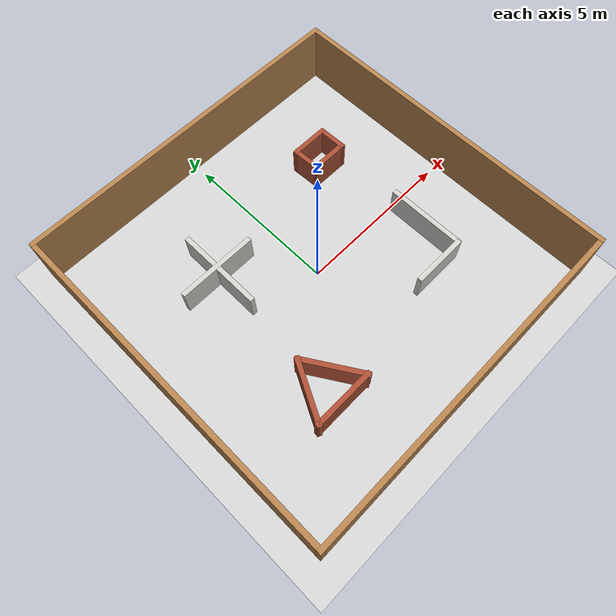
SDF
<?xml version='1.0' encoding='UTF-8'?>
<sdf version="1.6">
  <world name="default">
    <light name="sun" type="directional">
      <cast_shadows>1</cast_shadows>
      <pose frame="">0 0 10 0 -0 0</pose>
      <diffuse>0.8 0.8 0.8 1</diffuse>
      <specular>0.1 0.1 0.1 1</specular>
      <attenuation>
        <range>1000</range>
        <constant>0.9</constant>
        <linear>0.01</linear>
        <quadratic>0.001</quadratic>
      </attenuation>
      <direction>-0.5 0.5 -1</direction>
    </light>
    <model name="ground_plane">
      <static>1</static>
      <link name="link">
        <collision name="collision">
          <geometry>
            <plane>
              <normal>0 0 1</normal>
              <size>100 100</size>
            </plane>
          </geometry>
          <surface>
            <friction>
              <ode>
                <mu>100</mu>
                <mu2>50</mu2>
              </ode>
              <torsional>
                <ode/>
              </torsional>
            </friction>
            <contact>
              <ode/>
            </contact>
            <bounce/>
          </surface>
          <max_contacts>10</max_contacts>
        </collision>
        <visual name="visual">
          <cast_shadows>0</cast_shadows>
          <geometry>
            <plane>
              <normal>0 0 1</normal>
              <size>100 100</size>
            </plane>
          </geometry>
          <material>
            <script>
              <uri>file://media/materials/scripts/gazebo.material</uri>
              <name>Gazebo/Grey</name>
            </script>
          </material>
        </visual>
        <self_collide>0</self_collide>
        <kinematic>0</kinematic>
        <gravity>1</gravity>
      </link>
    </model>
    <gravity>0 0 -9.8</gravity>
    <magnetic_field>6e-06 2.3e-05 -4.2e-05</magnetic_field>
    <atmosphere type="adiabatic"/>
    <physics name="default_physics" default="0" type="ode">
      <max_step_size>0.001</max_step_size>
      <real_time_factor>10.0</real_time_factor>
      <real_time_update_rate>1000</real_time_update_rate>
    </physics>
    <scene>
      <ambient>0.4 0.4 0.4 1</ambient>
      <background>0.7 0.7 0.7 1</background>
      <shadows>1</shadows>
    </scene>
    <spherical_coordinates>
      <surface_model>EARTH_WGS84</surface_model>
      <latitude_deg>0</latitude_deg>
      <longitude_deg>0</longitude_deg>
      <elevation>0</elevation>
      <heading_deg>0</heading_deg>
    </spherical_coordinates>
    <model name="box">
      <link name="Wall_11">
        <pose frame="">-2.152 1.857 0 0 -0 0</pose>
        <self_collide>0</self_collide>
        <kinematic>0</kinematic>
        <visual name="Wall_11_Visual">
          <pose frame="">0 0 0.5 0 -0 0</pose>
          <geometry>
            <box>
              <size>2.5 0.15 1</size>
            </box>
          </geometry>
          <material>
            <script>
              <uri>file://media/materials/scripts/gazebo.material</uri>
              <name>Gazebo/CeilingTiled</name>
            </script>
            <ambient>1 1 1 1</ambient>
            <diffuse>1 1 1 1</diffuse>
            <specular>0 0 0 1</specular>
            <emissive>0 0 0 1</emissive>
          </material>
          <meta>
            <layer>0</layer>
          </meta>
          <cast_shadows>1</cast_shadows>
          <transparency>0</transparency>
        </visual>
        <collision name="Wall_11_Collision">
          <laser_retro>0</laser_retro>
          <max_contacts>10</max_contacts>
          <pose frame="">0 0 0.5 0 -0 0</pose>
          <geometry>
            <box>
              <size>2.5 0.15 1</size>
            </box>
          </geometry>
          <surface>
            <friction>
              <ode>
                <mu>1</mu>
                <mu2>1</mu2>
                <fdir1>0 0 0</fdir1>
                <slip1>0</slip1>
                <slip2>0</slip2>
              </ode>
              <torsional>
                <coefficient>1</coefficient>
                <patch_radius>0</patch_radius>
                <surface_radius>0</surface_radius>
                <use_patch_radius>1</use_patch_radius>
                <ode>
                  <slip>0</slip>
                </ode>
              </torsional>
            </friction>
            <bounce>
              <restitution_coefficient>0</restitution_coefficient>
              <threshold>1e+06</threshold>
            </bounce>
            <contact>
              <collide_without_contact>0</collide_without_contact>
              <collide_without_contact_bitmask>1</collide_without_contact_bitmask>
              <collide_bitmask>1</collide_bitmask>
              <ode>
                <soft_cfm>0</soft_cfm>
                <soft_erp>0.2</soft_erp>
                <kp>1e+13</kp>
                <kd>1</kd>
                <max_vel>0.01</max_vel>
                <min_depth>0</min_depth>
              </ode>
              <bullet>
                <split_impulse>1</split_impulse>
                <split_impulse_penetration_threshold>-0.01</split_impulse_penetration_threshold>
                <soft_cfm>0</soft_cfm>
                <soft_erp>0.2</soft_erp>
                <kp>1e+13</kp>
                <kd>1</kd>
              </bullet>
            </contact>
          </surface>
        </collision>
        <gravity>1</gravity>
      </link>
      <link name="Wall_13">
        <pose frame="">-2.155 1.764 0 0 0 -1.5708</pose>
        <self_collide>0</self_collide>
        <kinematic>0</kinematic>
        <visual name="Wall_13_Visual">
          <pose frame="">0 0 0.5 0 -0 0</pose>
          <geometry>
            <box>
              <size>2.75 0.15 1</size>
            </box>
          </geometry>
          <material>
            <script>
              <uri>file://media/materials/scripts/gazebo.material</uri>
              <name>Gazebo/CeilingTiled</name>
            </script>
            <ambient>1 1 1 1</ambient>
            <diffuse>1 1 1 1</diffuse>
            <specular>0 0 0 1</specular>
            <emissive>0 0 0 1</emissive>
          </material>
          <meta>
            <layer>0</layer>
          </meta>
          <cast_shadows>1</cast_shadows>
          <transparency>0</transparency>
        </visual>
        <collision name="Wall_13_Collision">
          <laser_retro>0</laser_retro>
          <max_contacts>10</max_contacts>
          <pose frame="">0 0 0.5 0 -0 0</pose>
          <geometry>
            <box>
              <size>2.75 0.15 1</size>
            </box>
          </geometry>
          <surface>
            <friction>
              <ode>
                <mu>1</mu>
                <mu2>1</mu2>
                <fdir1>0 0 0</fdir1>
                <slip1>0</slip1>
                <slip2>0</slip2>
              </ode>
              <torsional>
                <coefficient>1</coefficient>
                <patch_radius>0</patch_radius>
                <surface_radius>0</surface_radius>
                <use_patch_radius>1</use_patch_radius>
                <ode>
                  <slip>0</slip>
                </ode>
              </torsional>
            </friction>
            <bounce>
              <restitution_coefficient>0</restitution_coefficient>
              <threshold>1e+06</threshold>
            </bounce>
            <contact>
              <collide_without_contact>0</collide_without_contact>
              <collide_without_contact_bitmask>1</collide_without_contact_bitmask>
              <collide_bitmask>1</collide_bitmask>
              <ode>
                <soft_cfm>0</soft_cfm>
                <soft_erp>0.2</soft_erp>
                <kp>1e+13</kp>
                <kd>1</kd>
                <max_vel>0.01</max_vel>
                <min_depth>0</min_depth>
              </ode>
              <bullet>
                <split_impulse>1</split_impulse>
                <split_impulse_penetration_threshold>-0.01</split_impulse_penetration_threshold>
                <soft_cfm>0</soft_cfm>
                <soft_erp>0.2</soft_erp>
                <kp>1e+13</kp>
                <kd>1</kd>
              </bullet>
            </contact>
          </surface>
        </collision>
        <gravity>1</gravity>
      </link>
      <link name="Wall_15">
        <pose frame="">2.724 3.029 0 0 -0 0</pose>
        <self_collide>0</self_collide>
        <kinematic>0</kinematic>
        <visual name="Wall_15_Visual">
          <pose frame="">0 0 0.5 0 -0 0</pose>
          <geometry>
            <box>
              <size>1.2678 0.15 1</size>
            </box>
          </geometry>
          <material>
            <script>
              <uri>file://media/materials/scripts/gazebo.material</uri>
              <name>Gazebo/Bricks</name>
            </script>
            <ambient>1 1 1 1</ambient>
            <diffuse>1 1 1 1</diffuse>
            <specular>0.2 0.2 0.2 1</specular>
            <emissive>0 0 0 1</emissive>
          </material>
          <meta>
            <layer>0</layer>
          </meta>
          <cast_shadows>1</cast_shadows>
          <transparency>0</transparency>
        </visual>
        <collision name="Wall_15_Collision">
          <laser_retro>0</laser_retro>
          <max_contacts>10</max_contacts>
          <pose frame="">0 0 0.5 0 -0 0</pose>
          <geometry>
            <box>
              <size>1.2678 0.15 1</size>
            </box>
          </geometry>
          <surface>
            <friction>
              <ode>
                <mu>1</mu>
                <mu2>1</mu2>
                <fdir1>0 0 0</fdir1>
                <slip1>0</slip1>
                <slip2>0</slip2>
              </ode>
              <torsional>
                <coefficient>1</coefficient>
                <patch_radius>0</patch_radius>
                <surface_radius>0</surface_radius>
                <use_patch_radius>1</use_patch_radius>
                <ode>
                  <slip>0</slip>
                </ode>
              </torsional>
            </friction>
            <bounce>
              <restitution_coefficient>0</restitution_coefficient>
              <threshold>1e+06</threshold>
            </bounce>
            <contact>
              <collide_without_contact>0</collide_without_contact>
              <collide_without_contact_bitmask>1</collide_without_contact_bitmask>
              <collide_bitmask>1</collide_bitmask>
              <ode>
                <soft_cfm>0</soft_cfm>
                <soft_erp>0.2</soft_erp>
                <kp>1e+13</kp>
                <kd>1</kd>
                <max_vel>0.01</max_vel>
                <min_depth>0</min_depth>
              </ode>
              <bullet>
                <split_impulse>1</split_impulse>
                <split_impulse_penetration_threshold>-0.01</split_impulse_penetration_threshold>
                <soft_cfm>0</soft_cfm>
                <soft_erp>0.2</soft_erp>
                <kp>1e+13</kp>
                <kd>1</kd>
              </bullet>
            </contact>
          </surface>
        </collision>
        <gravity>1</gravity>
      </link>
      <link name="Wall_16">
        <pose frame="">3.2915 2.6215 0 0 0 -1.54994</pose>
        <self_collide>0</self_collide>
        <kinematic>0</kinematic>
        <visual name="Wall_16_Visual">
          <pose frame="">0 0 0.5 0 -0 0</pose>
          <geometry>
            <box>
              <size>0.965005 0.15 1</size>
            </box>
          </geometry>
          <material>
            <script>
              <uri>file://media/materials/scripts/gazebo.material</uri>
              <name>Gazebo/Bricks</name>
            </script>
            <ambient>1 1 1 1</ambient>
            <diffuse>1 1 1 1</diffuse>
            <specular>0.2 0.2 0.2 1</specular>
            <emissive>0 0 0 1</emissive>
          </material>
          <meta>
            <layer>0</layer>
          </meta>
          <cast_shadows>1</cast_shadows>
          <transparency>0</transparency>
        </visual>
        <collision name="Wall_16_Collision">
          <laser_retro>0</laser_retro>
          <max_contacts>10</max_contacts>
          <pose frame="">0 0 0.5 0 -0 0</pose>
          <geometry>
            <box>
              <size>0.965005 0.15 1</size>
            </box>
          </geometry>
          <surface>
            <friction>
              <ode>
                <mu>1</mu>
                <mu2>1</mu2>
                <fdir1>0 0 0</fdir1>
                <slip1>0</slip1>
                <slip2>0</slip2>
              </ode>
              <torsional>
                <coefficient>1</coefficient>
                <patch_radius>0</patch_radius>
                <surface_radius>0</surface_radius>
                <use_patch_radius>1</use_patch_radius>
                <ode>
                  <slip>0</slip>
                </ode>
              </torsional>
            </friction>
            <bounce>
              <restitution_coefficient>0</restitution_coefficient>
              <threshold>1e+06</threshold>
            </bounce>
            <contact>
              <collide_without_contact>0</collide_without_contact>
              <collide_without_contact_bitmask>1</collide_without_contact_bitmask>
              <collide_bitmask>1</collide_bitmask>
              <ode>
                <soft_cfm>0</soft_cfm>
                <soft_erp>0.2</soft_erp>
                <kp>1e+13</kp>
                <kd>1</kd>
                <max_vel>0.01</max_vel>
                <min_depth>0</min_depth>
              </ode>
              <bullet>
                <split_impulse>1</split_impulse>
                <split_impulse_penetration_threshold>-0.01</split_impulse_penetration_threshold>
                <soft_cfm>0</soft_cfm>
                <soft_erp>0.2</soft_erp>
                <kp>1e+13</kp>
                <kd>1</kd>
              </bullet>
            </contact>
          </surface>
        </collision>
        <gravity>1</gravity>
      </link>
      <link name="Wall_17">
        <pose frame="">2.75 2.214 0 0 -0 3.14159</pose>
        <self_collide>0</self_collide>
        <kinematic>0</kinematic>
        <visual name="Wall_17_Visual">
          <pose frame="">0 0 0.5 0 -0 0</pose>
          <geometry>
            <box>
              <size>1.25 0.15 1</size>
            </box>
          </geometry>
          <material>
            <script>
              <uri>file://media/materials/scripts/gazebo.material</uri>
              <name>Gazebo/Bricks</name>
            </script>
            <ambient>1 1 1 1</ambient>
            <diffuse>1 1 1 1</diffuse>
            <specular>0.2 0.2 0.2 1</specular>
            <emissive>0 0 0 1</emissive>
          </material>
          <meta>
            <layer>0</layer>
          </meta>
          <cast_shadows>1</cast_shadows>
          <transparency>0</transparency>
        </visual>
        <collision name="Wall_17_Collision">
          <laser_retro>0</laser_retro>
          <max_contacts>10</max_contacts>
          <pose frame="">0 0 0.5 0 -0 0</pose>
          <geometry>
            <box>
              <size>1.25 0.15 1</size>
            </box>
          </geometry>
          <surface>
            <friction>
              <ode>
                <mu>1</mu>
                <mu2>1</mu2>
                <fdir1>0 0 0</fdir1>
                <slip1>0</slip1>
                <slip2>0</slip2>
              </ode>
              <torsional>
                <coefficient>1</coefficient>
                <patch_radius>0</patch_radius>
                <surface_radius>0</surface_radius>
                <use_patch_radius>1</use_patch_radius>
                <ode>
                  <slip>0</slip>
                </ode>
              </torsional>
            </friction>
            <bounce>
              <restitution_coefficient>0</restitution_coefficient>
              <threshold>1e+06</threshold>
            </bounce>
            <contact>
              <collide_without_contact>0</collide_without_contact>
              <collide_without_contact_bitmask>1</collide_without_contact_bitmask>
              <collide_bitmask>1</collide_bitmask>
              <ode>
                <soft_cfm>0</soft_cfm>
                <soft_erp>0.2</soft_erp>
                <kp>1e+13</kp>
                <kd>1</kd>
                <max_vel>0.01</max_vel>
                <min_depth>0</min_depth>
              </ode>
              <bullet>
                <split_impulse>1</split_impulse>
                <split_impulse_penetration_threshold>-0.01</split_impulse_penetration_threshold>
                <soft_cfm>0</soft_cfm>
                <soft_erp>0.2</soft_erp>
                <kp>1e+13</kp>
                <kd>1</kd>
              </bullet>
            </contact>
          </surface>
        </collision>
        <gravity>1</gravity>
      </link>
      <link name="Wall_18">
        <pose frame="">2.1825 2.6215 0 0 -0 1.61372</pose>
        <self_collide>0</self_collide>
        <kinematic>0</kinematic>
        <visual name="Wall_18_Visual">
          <pose frame="">0 0 0.5 0 -0 0</pose>
          <geometry>
            <box>
              <size>0.965005 0.15 1</size>
            </box>
          </geometry>
          <material>
            <script>
              <uri>file://media/materials/scripts/gazebo.material</uri>
              <name>Gazebo/Bricks</name>
            </script>
            <ambient>1 1 1 1</ambient>
            <diffuse>1 1 1 1</diffuse>
            <specular>0.2 0.2 0.2 1</specular>
            <emissive>0 0 0 1</emissive>
          </material>
          <meta>
            <layer>0</layer>
          </meta>
          <cast_shadows>1</cast_shadows>
          <transparency>0</transparency>
        </visual>
        <collision name="Wall_18_Collision">
          <laser_retro>0</laser_retro>
          <max_contacts>10</max_contacts>
          <pose frame="">0 0 0.5 0 -0 0</pose>
          <geometry>
            <box>
              <size>0.965005 0.15 1</size>
            </box>
          </geometry>
          <surface>
            <friction>
              <ode>
                <mu>1</mu>
                <mu2>1</mu2>
                <fdir1>0 0 0</fdir1>
                <slip1>0</slip1>
                <slip2>0</slip2>
              </ode>
              <torsional>
                <coefficient>1</coefficient>
                <patch_radius>0</patch_radius>
                <surface_radius>0</surface_radius>
                <use_patch_radius>1</use_patch_radius>
                <ode>
                  <slip>0</slip>
                </ode>
              </torsional>
            </friction>
            <bounce>
              <restitution_coefficient>0</restitution_coefficient>
              <threshold>1e+06</threshold>
            </bounce>
            <contact>
              <collide_without_contact>0</collide_without_contact>
              <collide_without_contact_bitmask>1</collide_without_contact_bitmask>
              <collide_bitmask>1</collide_bitmask>
              <ode>
                <soft_cfm>0</soft_cfm>
                <soft_erp>0.2</soft_erp>
                <kp>1e+13</kp>
                <kd>1</kd>
                <max_vel>0.01</max_vel>
                <min_depth>0</min_depth>
              </ode>
              <bullet>
                <split_impulse>1</split_impulse>
                <split_impulse_penetration_threshold>-0.01</split_impulse_penetration_threshold>
                <soft_cfm>0</soft_cfm>
                <soft_erp>0.2</soft_erp>
                <kp>1e+13</kp>
                <kd>1</kd>
              </bullet>
            </contact>
          </surface>
        </collision>
        <gravity>1</gravity>
      </link>
      <link name="Wall_24">
        <pose frame="">-2.89576 -2.49088 0 0 -0 1.09459</pose>
        <self_collide>0</self_collide>
        <kinematic>0</kinematic>
        <visual name="Wall_24_Visual">
          <pose frame="">0 0 0.5 0 -0 0</pose>
          <geometry>
            <box>
              <size>1.97704 0.15 1</size>
            </box>
          </geometry>
          <material>
            <script>
              <uri>file://media/materials/scripts/gazebo.material</uri>
              <name>Gazebo/Bricks</name>
            </script>
            <ambient>1 1 1 1</ambient>
            <diffuse>1 1 1 1</diffuse>
            <specular>0.2 0.2 0.2 1</specular>
            <emissive>0 0 0 1</emissive>
          </material>
          <meta>
            <layer>0</layer>
          </meta>
          <cast_shadows>1</cast_shadows>
          <transparency>0</transparency>
        </visual>
        <collision name="Wall_24_Collision">
          <laser_retro>0</laser_retro>
          <max_contacts>10</max_contacts>
          <pose frame="">0 0 0.5 0 -0 0</pose>
          <geometry>
            <box>
              <size>1.97704 0.15 1</size>
            </box>
          </geometry>
          <surface>
            <friction>
              <ode>
                <mu>1</mu>
                <mu2>1</mu2>
                <fdir1>0 0 0</fdir1>
                <slip1>0</slip1>
                <slip2>0</slip2>
              </ode>
              <torsional>
                <coefficient>1</coefficient>
                <patch_radius>0</patch_radius>
                <surface_radius>0</surface_radius>
                <use_patch_radius>1</use_patch_radius>
                <ode>
                  <slip>0</slip>
                </ode>
              </torsional>
            </friction>
            <bounce>
              <restitution_coefficient>0</restitution_coefficient>
              <threshold>1e+06</threshold>
            </bounce>
            <contact>
              <collide_without_contact>0</collide_without_contact>
              <collide_without_contact_bitmask>1</collide_without_contact_bitmask>
              <collide_bitmask>1</collide_bitmask>
              <ode>
                <soft_cfm>0</soft_cfm>
                <soft_erp>0.2</soft_erp>
                <kp>1e+13</kp>
                <kd>1</kd>
                <max_vel>0.01</max_vel>
                <min_depth>0</min_depth>
              </ode>
              <bullet>
                <split_impulse>1</split_impulse>
                <split_impulse_penetration_threshold>-0.01</split_impulse_penetration_threshold>
                <soft_cfm>0</soft_cfm>
                <soft_erp>0.2</soft_erp>
                <kp>1e+13</kp>
                <kd>1</kd>
              </bullet>
            </contact>
          </surface>
        </collision>
        <gravity>1</gravity>
      </link>
      <link name="Wall_25">
        <pose frame="">-1.97077 -2.49088 0 0 0 -1.01325</pose>
        <self_collide>0</self_collide>
        <kinematic>0</kinematic>
        <visual name="Wall_25_Visual">
          <pose frame="">0 0 0.5 0 -0 0</pose>
          <geometry>
            <box>
              <size>2.06356 0.15 1</size>
            </box>
          </geometry>
          <material>
            <script>
              <uri>file://media/materials/scripts/gazebo.material</uri>
              <name>Gazebo/Bricks</name>
            </script>
            <ambient>1 1 1 1</ambient>
            <diffuse>1 1 1 1</diffuse>
            <specular>0.2 0.2 0.2 1</specular>
            <emissive>0 0 0 1</emissive>
          </material>
          <meta>
            <layer>0</layer>
          </meta>
          <cast_shadows>1</cast_shadows>
          <transparency>0</transparency>
        </visual>
        <collision name="Wall_25_Collision">
          <laser_retro>0</laser_retro>
          <max_contacts>10</max_contacts>
          <pose frame="">0 0 0.5 0 -0 0</pose>
          <geometry>
            <box>
              <size>2.06356 0.15 1</size>
            </box>
          </geometry>
          <surface>
            <friction>
              <ode>
                <mu>1</mu>
                <mu2>1</mu2>
                <fdir1>0 0 0</fdir1>
                <slip1>0</slip1>
                <slip2>0</slip2>
              </ode>
              <torsional>
                <coefficient>1</coefficient>
                <patch_radius>0</patch_radius>
                <surface_radius>0</surface_radius>
                <use_patch_radius>1</use_patch_radius>
                <ode>
                  <slip>0</slip>
                </ode>
              </torsional>
            </friction>
            <bounce>
              <restitution_coefficient>0</restitution_coefficient>
              <threshold>1e+06</threshold>
            </bounce>
            <contact>
              <collide_without_contact>0</collide_without_contact>
              <collide_without_contact_bitmask>1</collide_without_contact_bitmask>
              <collide_bitmask>1</collide_bitmask>
              <ode>
                <soft_cfm>0</soft_cfm>
                <soft_erp>0.2</soft_erp>
                <kp>1e+13</kp>
                <kd>1</kd>
                <max_vel>0.01</max_vel>
                <min_depth>0</min_depth>
              </ode>
              <bullet>
                <split_impulse>1</split_impulse>
                <split_impulse_penetration_threshold>-0.01</split_impulse_penetration_threshold>
                <soft_cfm>0</soft_cfm>
                <soft_erp>0.2</soft_erp>
                <kp>1e+13</kp>
                <kd>1</kd>
              </bullet>
            </contact>
          </surface>
        </collision>
        <gravity>1</gravity>
      </link>
      <link name="Wall_26">
        <pose frame="">-2.38953 -3.28527 0 0 -0 3.14159</pose>
        <self_collide>0</self_collide>
        <kinematic>0</kinematic>
        <visual name="Wall_26_Visual">
          <pose frame="">0 0 0.5 0 -0 0</pose>
          <geometry>
            <box>
              <size>2 0.15 1</size>
            </box>
          </geometry>
          <material>
            <script>
              <uri>file://media/materials/scripts/gazebo.material</uri>
              <name>Gazebo/Bricks</name>
            </script>
            <ambient>1 1 1 1</ambient>
            <diffuse>1 1 1 1</diffuse>
            <specular>0.2 0.2 0.2 1</specular>
            <emissive>0 0 0 1</emissive>
          </material>
          <meta>
            <layer>0</layer>
          </meta>
          <cast_shadows>1</cast_shadows>
          <transparency>0</transparency>
        </visual>
        <collision name="Wall_26_Collision">
          <laser_retro>0</laser_retro>
          <max_contacts>10</max_contacts>
          <pose frame="">0 0 0.5 0 -0 0</pose>
          <geometry>
            <box>
              <size>2 0.15 1</size>
            </box>
          </geometry>
          <surface>
            <friction>
              <ode>
                <mu>1</mu>
                <mu2>1</mu2>
                <fdir1>0 0 0</fdir1>
                <slip1>0</slip1>
                <slip2>0</slip2>
              </ode>
              <torsional>
                <coefficient>1</coefficient>
                <patch_radius>0</patch_radius>
                <surface_radius>0</surface_radius>
                <use_patch_radius>1</use_patch_radius>
                <ode>
                  <slip>0</slip>
                </ode>
              </torsional>
            </friction>
            <bounce>
              <restitution_coefficient>0</restitution_coefficient>
              <threshold>1e+06</threshold>
            </bounce>
            <contact>
              <collide_without_contact>0</collide_without_contact>
              <collide_without_contact_bitmask>1</collide_without_contact_bitmask>
              <collide_bitmask>1</collide_bitmask>
              <ode>
                <soft_cfm>0</soft_cfm>
                <soft_erp>0.2</soft_erp>
                <kp>1e+13</kp>
                <kd>1</kd>
                <max_vel>0.01</max_vel>
                <min_depth>0</min_depth>
              </ode>
              <bullet>
                <split_impulse>1</split_impulse>
                <split_impulse_penetration_threshold>-0.01</split_impulse_penetration_threshold>
                <soft_cfm>0</soft_cfm>
                <soft_erp>0.2</soft_erp>
                <kp>1e+13</kp>
                <kd>1</kd>
              </bullet>
            </contact>
          </surface>
        </collision>
        <gravity>1</gravity>
      </link>
      <link name="Wall_28">
        <pose frame="">2.38813 -2.48047 0 0 -0 0</pose>
        <self_collide>0</self_collide>
        <kinematic>0</kinematic>
        <visual name="Wall_28_Visual">
          <pose frame="">0 0 0.5 0 -0 0</pose>
          <geometry>
            <box>
              <size>1.75 0.15 1</size>
            </box>
          </geometry>
          <material>
            <script>
              <uri>file://media/materials/scripts/gazebo.material</uri>
              <name>Gazebo/CeilingTiled</name>
            </script>
            <ambient>1 1 1 1</ambient>
            <diffuse>1 1 1 1</diffuse>
            <specular>0 0 0 1</specular>
            <emissive>0 0 0 1</emissive>
          </material>
          <meta>
            <layer>0</layer>
          </meta>
          <cast_shadows>1</cast_shadows>
          <transparency>0</transparency>
        </visual>
        <collision name="Wall_28_Collision">
          <laser_retro>0</laser_retro>
          <max_contacts>10</max_contacts>
          <pose frame="">0 0 0.5 0 -0 0</pose>
          <geometry>
            <box>
              <size>1.75 0.15 1</size>
            </box>
          </geometry>
          <surface>
            <friction>
              <ode>
                <mu>1</mu>
                <mu2>1</mu2>
                <fdir1>0 0 0</fdir1>
                <slip1>0</slip1>
                <slip2>0</slip2>
              </ode>
              <torsional>
                <coefficient>1</coefficient>
                <patch_radius>0</patch_radius>
                <surface_radius>0</surface_radius>
                <use_patch_radius>1</use_patch_radius>
                <ode>
                  <slip>0</slip>
                </ode>
              </torsional>
            </friction>
            <bounce>
              <restitution_coefficient>0</restitution_coefficient>
              <threshold>1e+06</threshold>
            </bounce>
            <contact>
              <collide_without_contact>0</collide_without_contact>
              <collide_without_contact_bitmask>1</collide_without_contact_bitmask>
              <collide_bitmask>1</collide_bitmask>
              <ode>
                <soft_cfm>0</soft_cfm>
                <soft_erp>0.2</soft_erp>
                <kp>1e+13</kp>
                <kd>1</kd>
                <max_vel>0.01</max_vel>
                <min_depth>0</min_depth>
              </ode>
              <bullet>
                <split_impulse>1</split_impulse>
                <split_impulse_penetration_threshold>-0.01</split_impulse_penetration_threshold>
                <soft_cfm>0</soft_cfm>
                <soft_erp>0.2</soft_erp>
                <kp>1e+13</kp>
                <kd>1</kd>
              </bullet>
            </contact>
          </surface>
        </collision>
        <gravity>1</gravity>
      </link>
      <link name="Wall_29">
        <pose frame="">3.20562 -1.28798 0 0 -0 1.5708</pose>
        <self_collide>0</self_collide>
        <kinematic>0</kinematic>
        <visual name="Wall_29_Visual">
          <pose frame="">0 0 0.5 0 -0 0</pose>
          <geometry>
            <box>
              <size>2.5 0.15 1</size>
            </box>
          </geometry>
          <material>
            <script>
              <uri>file://media/materials/scripts/gazebo.material</uri>
              <name>Gazebo/CeilingTiled</name>
            </script>
            <ambient>1 1 1 1</ambient>
            <diffuse>1 1 1 1</diffuse>
            <specular>0 0 0 1</specular>
            <emissive>0 0 0 1</emissive>
          </material>
          <meta>
            <layer>0</layer>
          </meta>
          <cast_shadows>1</cast_shadows>
          <transparency>0</transparency>
        </visual>
        <collision name="Wall_29_Collision">
          <laser_retro>0</laser_retro>
          <max_contacts>10</max_contacts>
          <pose frame="">0 0 0.5 0 -0 0</pose>
          <geometry>
            <box>
              <size>2.5 0.15 1</size>
            </box>
          </geometry>
          <surface>
            <friction>
              <ode>
                <mu>1</mu>
                <mu2>1</mu2>
                <fdir1>0 0 0</fdir1>
                <slip1>0</slip1>
                <slip2>0</slip2>
              </ode>
              <torsional>
                <coefficient>1</coefficient>
                <patch_radius>0</patch_radius>
                <surface_radius>0</surface_radius>
                <use_patch_radius>1</use_patch_radius>
                <ode>
                  <slip>0</slip>
                </ode>
              </torsional>
            </friction>
            <bounce>
              <restitution_coefficient>0</restitution_coefficient>
              <threshold>1e+06</threshold>
            </bounce>
            <contact>
              <collide_without_contact>0</collide_without_contact>
              <collide_without_contact_bitmask>1</collide_without_contact_bitmask>
              <collide_bitmask>1</collide_bitmask>
              <ode>
                <soft_cfm>0</soft_cfm>
                <soft_erp>0.2</soft_erp>
                <kp>1e+13</kp>
                <kd>1</kd>
                <max_vel>0.01</max_vel>
                <min_depth>0</min_depth>
              </ode>
              <bullet>
                <split_impulse>1</split_impulse>
                <split_impulse_penetration_threshold>-0.01</split_impulse_penetration_threshold>
                <soft_cfm>0</soft_cfm>
                <soft_erp>0.2</soft_erp>
                <kp>1e+13</kp>
                <kd>1</kd>
              </bullet>
            </contact>
          </surface>
        </collision>
        <gravity>1</gravity>
      </link>
      <link name="Wall_6">
        <pose frame="">0 5.425 0 0 -0 0</pose>
        <self_collide>0</self_collide>
        <kinematic>0</kinematic>
        <visual name="Wall_6_Visual">
          <pose frame="">0 0 1 0 -0 0</pose>
          <geometry>
            <box>
              <size>11 0.15 2</size>
            </box>
          </geometry>
          <material>
            <script>
              <uri>file://media/materials/scripts/gazebo.material</uri>
              <name>Gazebo/Wood</name>
            </script>
            <ambient>1 1 1 1</ambient>
            <diffuse>1 1 1 1</diffuse>
            <specular>0.2 0.2 0.2 1</specular>
            <emissive>0 0 0 1</emissive>
          </material>
          <meta>
            <layer>0</layer>
          </meta>
          <cast_shadows>1</cast_shadows>
          <transparency>0</transparency>
        </visual>
        <collision name="Wall_6_Collision">
          <laser_retro>0</laser_retro>
          <max_contacts>10</max_contacts>
          <pose frame="">0 0 1 0 -0 0</pose>
          <geometry>
            <box>
              <size>11 0.15 2</size>
            </box>
          </geometry>
          <surface>
            <friction>
              <ode>
                <mu>1</mu>
                <mu2>1</mu2>
                <fdir1>0 0 0</fdir1>
                <slip1>0</slip1>
                <slip2>0</slip2>
              </ode>
              <torsional>
                <coefficient>1</coefficient>
                <patch_radius>0</patch_radius>
                <surface_radius>0</surface_radius>
                <use_patch_radius>1</use_patch_radius>
                <ode>
                  <slip>0</slip>
                </ode>
              </torsional>
            </friction>
            <bounce>
              <restitution_coefficient>0</restitution_coefficient>
              <threshold>1e+06</threshold>
            </bounce>
            <contact>
              <collide_without_contact>0</collide_without_contact>
              <collide_without_contact_bitmask>1</collide_without_contact_bitmask>
              <collide_bitmask>1</collide_bitmask>
              <ode>
                <soft_cfm>0</soft_cfm>
                <soft_erp>0.2</soft_erp>
                <kp>1e+13</kp>
                <kd>1</kd>
                <max_vel>0.01</max_vel>
                <min_depth>0</min_depth>
              </ode>
              <bullet>
                <split_impulse>1</split_impulse>
                <split_impulse_penetration_threshold>-0.01</split_impulse_penetration_threshold>
                <soft_cfm>0</soft_cfm>
                <soft_erp>0.2</soft_erp>
                <kp>1e+13</kp>
                <kd>1</kd>
              </bullet>
            </contact>
          </surface>
        </collision>
        <gravity>1</gravity>
      </link>
      <link name="Wall_7">
        <pose frame="">5.425 0 0 0 0 -1.5708</pose>
        <self_collide>0</self_collide>
        <kinematic>0</kinematic>
        <visual name="Wall_7_Visual">
          <pose frame="">0 0 1 0 -0 0</pose>
          <geometry>
            <box>
              <size>11 0.15 2</size>
            </box>
          </geometry>
          <material>
            <script>
              <uri>file://media/materials/scripts/gazebo.material</uri>
              <name>Gazebo/Wood</name>
            </script>
            <ambient>1 1 1 1</ambient>
            <diffuse>1 1 1 1</diffuse>
            <specular>0.2 0.2 0.2 1</specular>
            <emissive>0 0 0 1</emissive>
          </material>
          <meta>
            <layer>0</layer>
          </meta>
          <cast_shadows>1</cast_shadows>
          <transparency>0</transparency>
        </visual>
        <collision name="Wall_7_Collision">
          <laser_retro>0</laser_retro>
          <max_contacts>10</max_contacts>
          <pose frame="">0 0 1 0 -0 0</pose>
          <geometry>
            <box>
              <size>11 0.15 2</size>
            </box>
          </geometry>
          <surface>
            <friction>
              <ode>
                <mu>1</mu>
                <mu2>1</mu2>
                <fdir1>0 0 0</fdir1>
                <slip1>0</slip1>
                <slip2>0</slip2>
              </ode>
              <torsional>
                <coefficient>1</coefficient>
                <patch_radius>0</patch_radius>
                <surface_radius>0</surface_radius>
                <use_patch_radius>1</use_patch_radius>
                <ode>
                  <slip>0</slip>
                </ode>
              </torsional>
            </friction>
            <bounce>
              <restitution_coefficient>0</restitution_coefficient>
              <threshold>1e+06</threshold>
            </bounce>
            <contact>
              <collide_without_contact>0</collide_without_contact>
              <collide_without_contact_bitmask>1</collide_without_contact_bitmask>
              <collide_bitmask>1</collide_bitmask>
              <ode>
                <soft_cfm>0</soft_cfm>
                <soft_erp>0.2</soft_erp>
                <kp>1e+13</kp>
                <kd>1</kd>
                <max_vel>0.01</max_vel>
                <min_depth>0</min_depth>
              </ode>
              <bullet>
                <split_impulse>1</split_impulse>
                <split_impulse_penetration_threshold>-0.01</split_impulse_penetration_threshold>
                <soft_cfm>0</soft_cfm>
                <soft_erp>0.2</soft_erp>
                <kp>1e+13</kp>
                <kd>1</kd>
              </bullet>
            </contact>
          </surface>
        </collision>
        <gravity>1</gravity>
      </link>
      <link name="Wall_8">
        <pose frame="">0 -5.425 0 0 -0 3.14159</pose>
        <self_collide>0</self_collide>
        <kinematic>0</kinematic>
        <visual name="Wall_8_Visual">
          <pose frame="">0 0 1 0 -0 0</pose>
          <geometry>
            <box>
              <size>11 0.15 2</size>
            </box>
          </geometry>
          <material>
            <script>
              <uri>file://media/materials/scripts/gazebo.material</uri>
              <name>Gazebo/Wood</name>
            </script>
            <ambient>1 1 1 1</ambient>
            <diffuse>1 1 1 1</diffuse>
            <specular>0.2 0.2 0.2 1</specular>
            <emissive>0 0 0 1</emissive>
          </material>
          <meta>
            <layer>0</layer>
          </meta>
          <cast_shadows>1</cast_shadows>
          <transparency>0</transparency>
        </visual>
        <collision name="Wall_8_Collision">
          <laser_retro>0</laser_retro>
          <max_contacts>10</max_contacts>
          <pose frame="">0 0 1 0 -0 0</pose>
          <geometry>
            <box>
              <size>11 0.15 2</size>
            </box>
          </geometry>
          <surface>
            <friction>
              <ode>
                <mu>1</mu>
                <mu2>1</mu2>
                <fdir1>0 0 0</fdir1>
                <slip1>0</slip1>
                <slip2>0</slip2>
              </ode>
              <torsional>
                <coefficient>1</coefficient>
                <patch_radius>0</patch_radius>
                <surface_radius>0</surface_radius>
                <use_patch_radius>1</use_patch_radius>
                <ode>
                  <slip>0</slip>
                </ode>
              </torsional>
            </friction>
            <bounce>
              <restitution_coefficient>0</restitution_coefficient>
              <threshold>1e+06</threshold>
            </bounce>
            <contact>
              <collide_without_contact>0</collide_without_contact>
              <collide_without_contact_bitmask>1</collide_without_contact_bitmask>
              <collide_bitmask>1</collide_bitmask>
              <ode>
                <soft_cfm>0</soft_cfm>
                <soft_erp>0.2</soft_erp>
                <kp>1e+13</kp>
                <kd>1</kd>
                <max_vel>0.01</max_vel>
                <min_depth>0</min_depth>
              </ode>
              <bullet>
                <split_impulse>1</split_impulse>
                <split_impulse_penetration_threshold>-0.01</split_impulse_penetration_threshold>
                <soft_cfm>0</soft_cfm>
                <soft_erp>0.2</soft_erp>
                <kp>1e+13</kp>
                <kd>1</kd>
              </bullet>
            </contact>
          </surface>
        </collision>
        <gravity>1</gravity>
      </link>
      <link name="Wall_9">
        <pose frame="">-5.425 0 0 0 -0 1.5708</pose>
        <self_collide>0</self_collide>
        <kinematic>0</kinematic>
        <visual name="Wall_9_Visual">
          <pose frame="">0 0 1 0 -0 0</pose>
          <geometry>
            <box>
              <size>11 0.15 2</size>
            </box>
          </geometry>
          <material>
            <script>
              <uri>file://media/materials/scripts/gazebo.material</uri>
              <name>Gazebo/Wood</name>
            </script>
            <ambient>1 1 1 1</ambient>
            <diffuse>1 1 1 1</diffuse>
            <specular>0.2 0.2 0.2 1</specular>
            <emissive>0 0 0 1</emissive>
          </material>
          <meta>
            <layer>0</layer>
          </meta>
          <cast_shadows>1</cast_shadows>
          <transparency>0</transparency>
        </visual>
        <collision name="Wall_9_Collision">
          <laser_retro>0</laser_retro>
          <max_contacts>10</max_contacts>
          <pose frame="">0 0 1 0 -0 0</pose>
          <geometry>
            <box>
              <size>11 0.15 2</size>
            </box>
          </geometry>
          <surface>
            <friction>
              <ode>
                <mu>1</mu>
                <mu2>1</mu2>
                <fdir1>0 0 0</fdir1>
                <slip1>0</slip1>
                <slip2>0</slip2>
              </ode>
              <torsional>
                <coefficient>1</coefficient>
                <patch_radius>0</patch_radius>
                <surface_radius>0</surface_radius>
                <use_patch_radius>1</use_patch_radius>
                <ode>
                  <slip>0</slip>
                </ode>
              </torsional>
            </friction>
            <bounce>
              <restitution_coefficient>0</restitution_coefficient>
              <threshold>1e+06</threshold>
            </bounce>
            <contact>
              <collide_without_contact>0</collide_without_contact>
              <collide_without_contact_bitmask>1</collide_without_contact_bitmask>
              <collide_bitmask>1</collide_bitmask>
              <ode>
                <soft_cfm>0</soft_cfm>
                <soft_erp>0.2</soft_erp>
                <kp>1e+13</kp>
                <kd>1</kd>
                <max_vel>0.01</max_vel>
                <min_depth>0</min_depth>
              </ode>
              <bullet>
                <split_impulse>1</split_impulse>
                <split_impulse_penetration_threshold>-0.01</split_impulse_penetration_threshold>
                <soft_cfm>0</soft_cfm>
                <soft_erp>0.2</soft_erp>
                <kp>1e+13</kp>
                <kd>1</kd>
              </bullet>
            </contact>
          </surface>
        </collision>
        <gravity>1</gravity>
      </link>
      <static>1</static>
      <allow_auto_disable>1</allow_auto_disable>
      <pose frame="">0.000564 -0.000118 0 0 -0 0</pose>
    </model>
      <model name="box">
        <pose frame="">0.00056 -0.00012 0 0 -0 0</pose>
        <scale>1 1 1</scale>
        <link name="Wall_11">
          <pose frame="">-2.15144 1.85688 0 0 -0 0</pose>
          <velocity>0 0 0 0 -0 0</velocity>
          <acceleration>0 0 0 0 -0 0</acceleration>
          <wrench>0 0 0 0 -0 0</wrench>
        </link>
        <link name="Wall_13">
          <pose frame="">-2.15444 1.76388 0 0 0 -1.5708</pose>
          <velocity>0 0 0 0 -0 0</velocity>
          <acceleration>0 0 0 0 -0 0</acceleration>
          <wrench>0 0 0 0 -0 0</wrench>
        </link>
        <link name="Wall_15">
          <pose frame="">2.72456 3.02888 0 0 -0 0</pose>
          <velocity>0 0 0 0 -0 0</velocity>
          <acceleration>0 0 0 0 -0 0</acceleration>
          <wrench>0 0 0 0 -0 0</wrench>
        </link>
        <link name="Wall_16">
          <pose frame="">3.29206 2.62138 0 0 0 -1.54994</pose>
          <velocity>0 0 0 0 -0 0</velocity>
          <acceleration>0 0 0 0 -0 0</acceleration>
          <wrench>0 0 0 0 -0 0</wrench>
        </link>
        <link name="Wall_17">
          <pose frame="">2.75056 2.21388 0 0 -0 3.14159</pose>
          <velocity>0 0 0 0 -0 0</velocity>
          <acceleration>0 0 0 0 -0 0</acceleration>
          <wrench>0 0 0 0 -0 0</wrench>
        </link>
        <link name="Wall_18">
          <pose frame="">2.18306 2.62138 0 0 -0 1.61372</pose>
          <velocity>0 0 0 0 -0 0</velocity>
          <acceleration>0 0 0 0 -0 0</acceleration>
          <wrench>0 0 0 0 -0 0</wrench>
        </link>
        <link name="Wall_24">
          <pose frame="">-2.8952 -2.491 0 0 -0 1.09459</pose>
          <velocity>0 0 0 0 -0 0</velocity>
          <acceleration>0 0 0 0 -0 0</acceleration>
          <wrench>0 0 0 0 -0 0</wrench>
        </link>
        <link name="Wall_25">
          <pose frame="">-1.97021 -2.491 0 0 0 -1.01325</pose>
          <velocity>0 0 0 0 -0 0</velocity>
          <acceleration>0 0 0 0 -0 0</acceleration>
          <wrench>0 0 0 0 -0 0</wrench>
        </link>
        <link name="Wall_26">
          <pose frame="">-2.38897 -3.28539 0 0 -0 3.14159</pose>
          <velocity>0 0 0 0 -0 0</velocity>
          <acceleration>0 0 0 0 -0 0</acceleration>
          <wrench>0 0 0 0 -0 0</wrench>
        </link>
        <link name="Wall_28">
          <pose frame="">2.38869 -2.48059 0 0 -0 0</pose>
          <velocity>0 0 0 0 -0 0</velocity>
          <acceleration>0 0 0 0 -0 0</acceleration>
          <wrench>0 0 0 0 -0 0</wrench>
        </link>
        <link name="Wall_29">
          <pose frame="">3.20618 -1.2881 0 0 -0 1.5708</pose>
          <velocity>0 0 0 0 -0 0</velocity>
          <acceleration>0 0 0 0 -0 0</acceleration>
          <wrench>0 0 0 0 -0 0</wrench>
        </link>
        <link name="Wall_6">
          <pose frame="">0.000564 5.42488 0 0 -0 0</pose>
          <velocity>0 0 0 0 -0 0</velocity>
          <acceleration>0 0 0 0 -0 0</acceleration>
          <wrench>0 0 0 0 -0 0</wrench>
        </link>
        <link name="Wall_7">
          <pose frame="">5.42556 -0.000118 0 0 0 -1.5708</pose>
          <velocity>0 0 0 0 -0 0</velocity>
          <acceleration>0 0 0 0 -0 0</acceleration>
          <wrench>0 0 0 0 -0 0</wrench>
        </link>
        <link name="Wall_8">
          <pose frame="">0.000564 -5.42512 0 0 -0 3.14159</pose>
          <velocity>0 0 0 0 -0 0</velocity>
          <acceleration>0 0 0 0 -0 0</acceleration>
          <wrench>0 0 0 0 -0 0</wrench>
        </link>
        <link name="Wall_9">
          <pose frame="">-5.42444 -0.000118 0 0 -0 1.5708</pose>
          <velocity>0 0 0 0 -0 0</velocity>
          <acceleration>0 0 0 0 -0 0</acceleration>
          <wrench>0 0 0 0 -0 0</wrench>
        </link>
      </model>
      <model name="cardboard_box_0">
        <pose frame="">3.96847 0.977565 0.149 0 -0 0</pose>
        <scale>1 1 1</scale>
        <link name="link">
          <pose frame="">3.96847 0.977565 0.149 0 -0 0</pose>
          <velocity>0 0 0 0 -0 0</velocity>
          <acceleration>0 -1.9e-05 0 0.000128 -2e-06 0</acceleration>
          <wrench>-1e-06 -3.8e-05 1e-06 0 -0 0</wrench>
        </link>
      </model>
      <model name="cardboard_box_1">
        <pose frame="">0.006438 -3.96264 0.149 0 -0 0</pose>
        <scale>1 1 1</scale>
        <link name="link">
          <pose frame="">0.006438 -3.96264 0.149 0 -0 0</pose>
          <velocity>0 0 0 0 -0 0</velocity>
          <acceleration>0 -1.9e-05 0 0.000128 -2e-06 0</acceleration>
          <wrench>-1e-06 -3.8e-05 1e-06 0 -0 0</wrench>
        </link>
      </model>
      <model name="cardboard_box_2">
        <pose frame="">-4.88373 2.96722 0.149 0 -0 0</pose>
        <scale>1 1 1</scale>
        <link name="link">
          <pose frame="">-4.88373 2.96722 0.149 0 -0 0</pose>
          <velocity>0 0 0 0 -0 0</velocity>
          <acceleration>0 -1.9e-05 0 0.000128 -2e-06 0</acceleration>
          <wrench>-1e-06 -3.8e-05 1e-06 0 -0 0</wrench>
        </link>
      </model>
      <model name="cardboard_box_3">
        <pose frame="">-0.0158 3.98725 0.149 0 -0 0</pose>
        <scale>1 1 1</scale>
        <link name="link">
          <pose frame="">-0.0158 3.98725 0.149 0 -0 0</pose>
          <velocity>0 0 0 0 -0 0</velocity>
          <acceleration>0 -1.9e-05 0 0.000128 -2e-06 0</acceleration>
          <wrench>-1e-06 -3.8e-05 1e-06 0 -0 0</wrench>
        </link>
      </model>
    <plugin name='gazebo_occupancy_map' filename='libgazebo_2Dmap_plugin.so'>
      <map_resolution>0.1</map_resolution> <!-- in meters, optional, default 0.1 -->
      <map_height>0.3</map_height>         <!-- in meters, optional, default 0.3 -->
      <map_size_x>20</map_size_x>          <!-- in meters, optional, default 10 -->
      <map_size_y>20</map_size_y>          <!-- in meters, optional, default 10 -->
      <init_robot_x>0</init_robot_x>          <!-- x coordinate in meters, optional, default 0 -->
      <init_robot_y>0</init_robot_y>          <!-- y coordinate in meters, optional, default 0 -->
    </plugin>
  </world>
</sdf>
